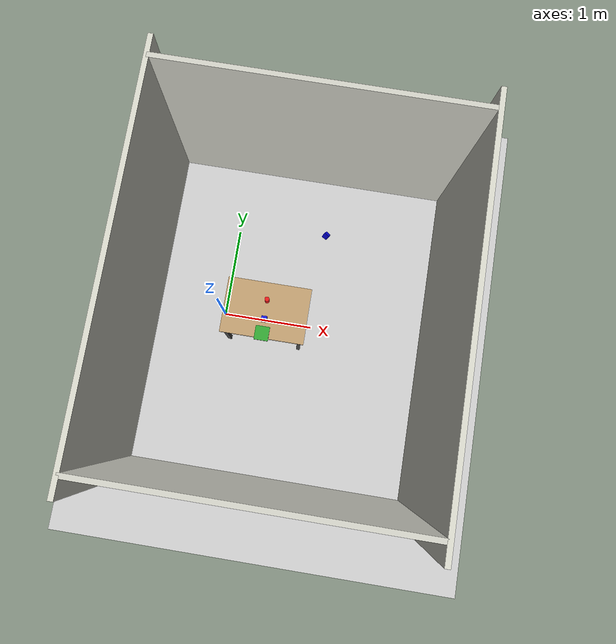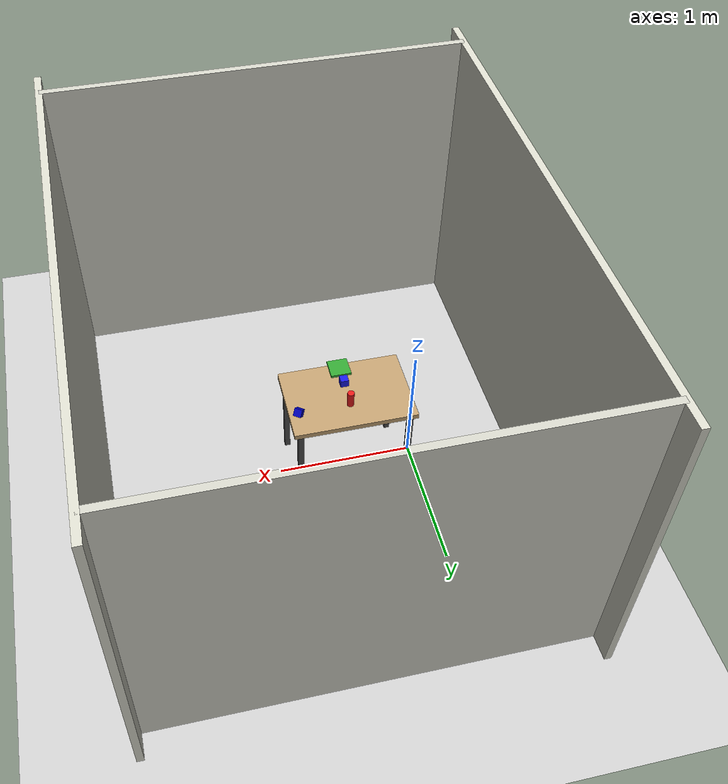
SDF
<sdf version="1.6">
 <world name="tabletop">
  <include><uri>model://sun</uri></include>
  <include><uri>model://ground_plane</uri></include>
  <plugin name="model_attachment" filename="libboeing_gazebo_model_attachment_plugin_lib.so"/>
  <plugin name="gazebo_ros_state" filename="libgazebo_ros_state.so">
   <ros><namespace>/gazebo</namespace></ros>
   <update_rate>10.0</update_rate>
  </plugin>
  <physics name="default" type="ode">
   <max_step_size>0.001</max_step_size>
   <real_time_factor>1.0</real_time_factor>
   <ode><solver><type>quick</type><iters>50</iters><sor>1.3</sor></solver></ode>
  </physics>
  <model name="table">
   <static>true</static>
   <pose>0.5 0.0 0.0 0 0 0</pose>
   <link name="surface">
    <pose>0 0 0.75 0 0 0</pose>
    <collision name="col">
     <geometry><box><size>0.90 0.60 0.04</size></box></geometry>
     <surface><friction><ode><mu>0.8</mu><mu2>0.8</mu2></ode></friction></surface>
    </collision>
    <visual name="vis">
     <geometry><box><size>0.90 0.60 0.04</size></box></geometry>
     <material><ambient>0.55 0.45 0.32 1</ambient><diffuse>0.75 0.62 0.44 1</diffuse></material>
    </visual>
   </link>
   <link name="leg_fl">
    <pose>0.40 0.26 0.375 0 0 0</pose>
    <collision name="col"><geometry><box><size>0.04 0.04 0.75</size></box></geometry></collision>
    <visual name="vis">
     <geometry><box><size>0.04 0.04 0.75</size></box></geometry>
     <material><ambient>0.3 0.3 0.3 1</ambient></material>
    </visual>
   </link>
   <link name="leg_fr">
    <pose>0.40 -0.26 0.375 0 0 0</pose>
    <collision name="col"><geometry><box><size>0.04 0.04 0.75</size></box></geometry></collision>
    <visual name="vis">
     <geometry><box><size>0.04 0.04 0.75</size></box></geometry>
     <material><ambient>0.3 0.3 0.3 1</ambient></material>
    </visual>
   </link>
   <link name="leg_bl">
    <pose>-0.40 0.26 0.375 0 0 0</pose>
    <collision name="col"><geometry><box><size>0.04 0.04 0.75</size></box></geometry></collision>
    <visual name="vis">
     <geometry><box><size>0.04 0.04 0.75</size></box></geometry>
     <material><ambient>0.3 0.3 0.3 1</ambient></material>
    </visual>
   </link>
   <link name="leg_br">
    <pose>-0.40 -0.26 0.375 0 0 0</pose>
    <collision name="col"><geometry><box><size>0.04 0.04 0.75</size></box></geometry></collision>
    <visual name="vis">
     <geometry><box><size>0.04 0.04 0.75</size></box></geometry>
     <material><ambient>0.3 0.3 0.3 1</ambient></material>
    </visual>
   </link>
  </model>
  <model name="red_cup">
   <pose>0.50 0.10 0.83 0 0 0</pose>
   <link name="link">
    <inertial>
     <mass>0.10</mass>
     <inertia><ixx>1.4e-4</ixx><ixy>0</ixy><ixz>0</ixz><iyy>1.4e-4</iyy><iyz>0</iyz><izz>3.1e-5</izz></inertia>
    </inertial>
    <collision name="col">
     <geometry><cylinder><radius>0.025</radius><length>0.12</length></cylinder></geometry>
     <surface><friction><ode><mu>1.5</mu><mu2>1.5</mu2></ode></friction></surface>
    </collision>
    <visual name="vis">
     <geometry><cylinder><radius>0.025</radius><length>0.12</length></cylinder></geometry>
     <material>
      <ambient>0.90 0.10 0.10 1</ambient>
      <diffuse>0.90 0.10 0.10 1</diffuse>
      <specular>0.3 0.3 0.3 1</specular>
     </material>
    </visual>
   </link>
  </model>
  <model name="blue_box">
   <pose>0.50 -0.10 0.80 0 0 0</pose>
   <link name="link">
    <inertial>
     <mass>0.10</mass>
     <inertia><ixx>1.0e-4</ixx><ixy>0</ixy><ixz>0</ixz><iyy>1.0e-4</iyy><iyz>0</iyz><izz>1.0e-4</izz></inertia>
    </inertial>
    <collision name="col">
     <geometry><box><size>0.06 0.06 0.06</size></box></geometry>
     <surface><friction><ode><mu>0.7</mu><mu2>0.7</mu2></ode></friction></surface>
    </collision>
    <visual name="vis">
     <geometry><box><size>0.06 0.06 0.06</size></box></geometry>
     <material>
      <ambient>0.10 0.10 0.90 1</ambient>
      <diffuse>0.10 0.10 0.90 1</diffuse>
      <specular>0.3 0.3 0.3 1</specular>
     </material>
    </visual>
   </link>
  </model>
  <model name="shelf_b">
   <static>true</static>
   <pose>0.50 -0.25 0.78 0 0 0</pose>
   <link name="surface">
    <collision name="col">
     <geometry><box><size>0.15 0.15 0.02</size></box></geometry>
     <surface><friction><ode><mu>0.8</mu><mu2>0.8</mu2></ode></friction></surface>
    </collision>
    <visual name="vis">
     <geometry><box><size>0.15 0.15 0.02</size></box></geometry>
     <material><ambient>0.20 0.65 0.20 1</ambient><diffuse>0.20 0.65 0.20 1</diffuse></material>
    </visual>
   </link>
  </model>
  <model name="room">
   <static>true</static>
   <pose>0.5 0.0 0.0 0 0 0</pose>
   <link name="wall_back">
    <pose>-1.3 0.0 1.2 0 0 0</pose>
    <collision name="col"><geometry><box><size>0.05 4.0 2.4</size></box></geometry></collision>
    <visual name="vis">
     <geometry><box><size>0.05 4.0 2.4</size></box></geometry>
     <material><ambient>0.85 0.85 0.80 1</ambient><diffuse>0.85 0.85 0.80 1</diffuse></material>
    </visual>
   </link>
   <link name="wall_front">
    <pose>1.8 0.0 1.2 0 0 0</pose>
    <collision name="col"><geometry><box><size>0.05 4.0 2.4</size></box></geometry></collision>
    <visual name="vis">
     <geometry><box><size>0.05 4.0 2.4</size></box></geometry>
     <material><ambient>0.85 0.85 0.80 1</ambient><diffuse>0.85 0.85 0.80 1</diffuse></material>
    </visual>
   </link>
   <link name="wall_left">
    <pose>0.25 1.8 1.2 0 0 0</pose>
    <collision name="col"><geometry><box><size>3.1 0.05 2.4</size></box></geometry></collision>
    <visual name="vis">
     <geometry><box><size>3.1 0.05 2.4</size></box></geometry>
     <material><ambient>0.82 0.82 0.78 1</ambient><diffuse>0.82 0.82 0.78 1</diffuse></material>
    </visual>
   </link>
   <link name="wall_right">
    <pose>0.25 -1.8 1.2 0 0 0</pose>
    <collision name="col"><geometry><box><size>3.1 0.05 2.4</size></box></geometry></collision>
    <visual name="vis">
     <geometry><box><size>3.1 0.05 2.4</size></box></geometry>
     <material><ambient>0.82 0.82 0.78 1</ambient><diffuse>0.82 0.82 0.78 1</diffuse></material>
    </visual>
   </link>
  </model>
  <model name="overview_camera">
   <static>true</static>
   <pose>1.0 0.7 1.5 0 0.68 -2.19</pose>
   <link name="camera_link">
    <visual name="vis">
     <geometry><box><size>0.05 0.05 0.05</size></box></geometry>
     <material><ambient>0 0 0.8 1</ambient><diffuse>0 0 0.8 1</diffuse></material>
    </visual>
    <sensor name="overview_camera" type="camera">
     <update_rate>10</update_rate>
     <camera>
      <horizontal_fov>1.047</horizontal_fov>
      <image><width>640</width><height>480</height><format>R8G8B8</format></image>
      <clip><near>0.05</near><far>5.0</far></clip>
     </camera>
     <plugin name="overview_camera_plugin" filename="libgazebo_ros_camera.so">
      <ros>
       <remapping>~/image_raw:=/overview_camera/image_raw</remapping>
       <remapping>~/camera_info:=/overview_camera/camera_info</remapping>
      </ros>
      <camera_name>overview_camera</camera_name>
      <frame_name>overview_camera_link</frame_name>
     </plugin>
    </sensor>
   </link>
  </model>
 </world>
</sdf>
